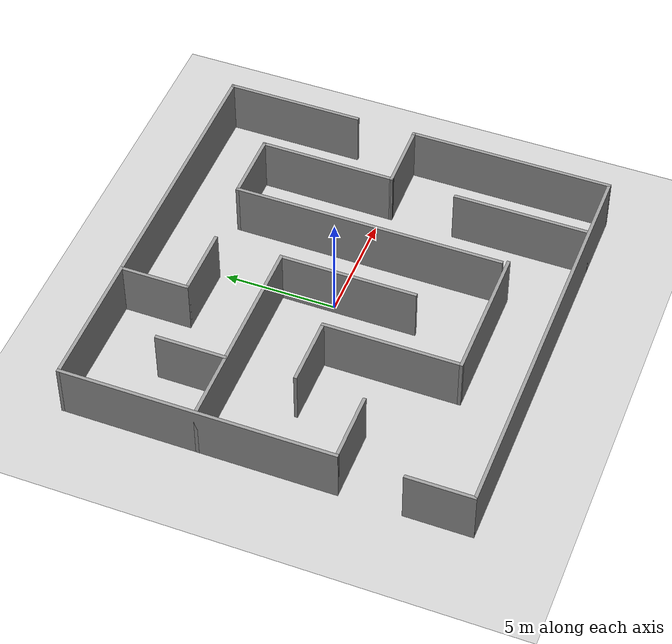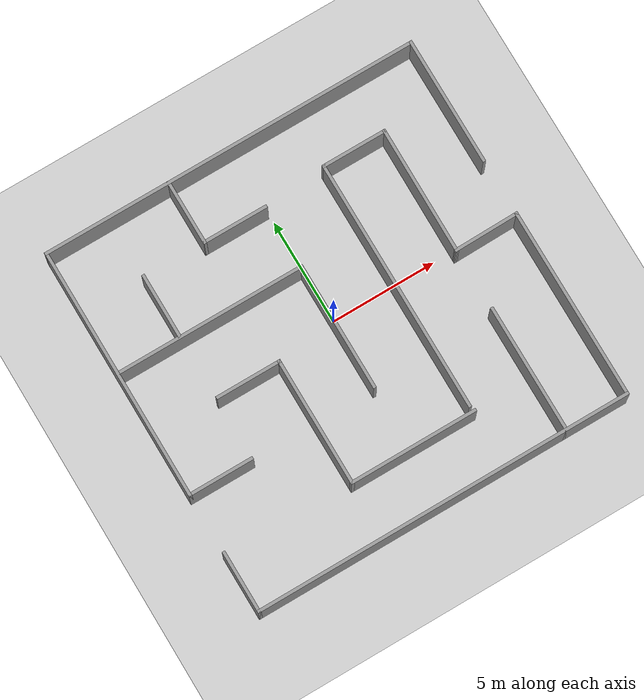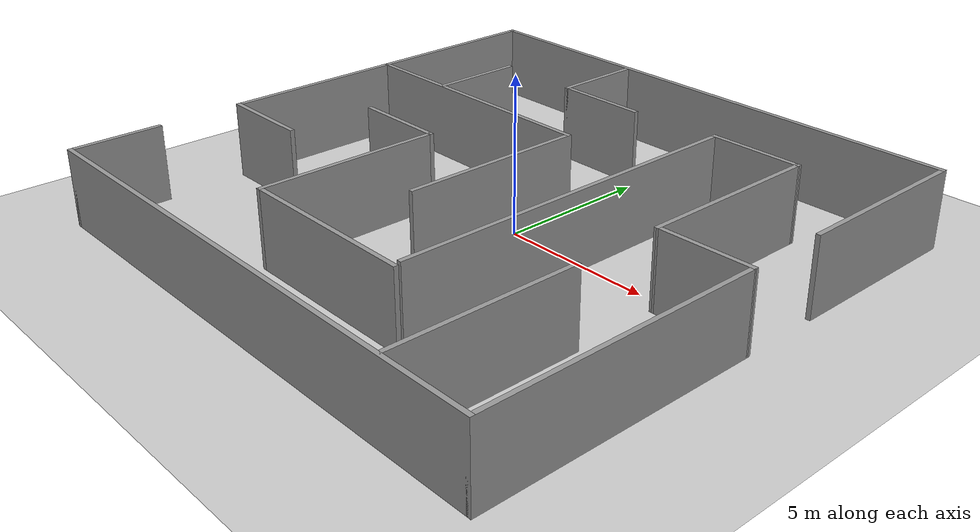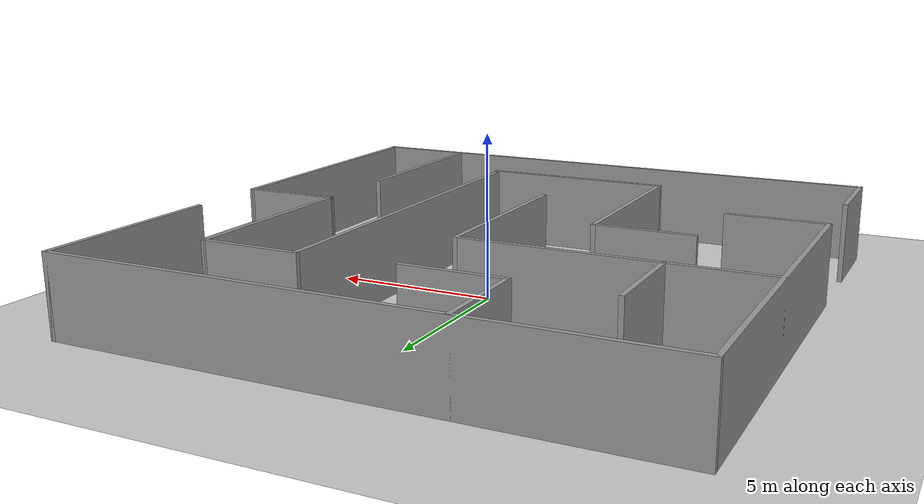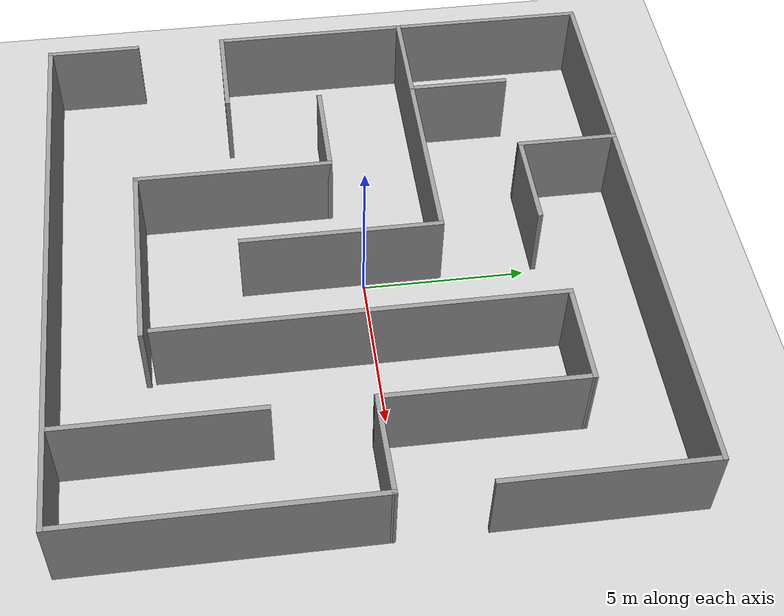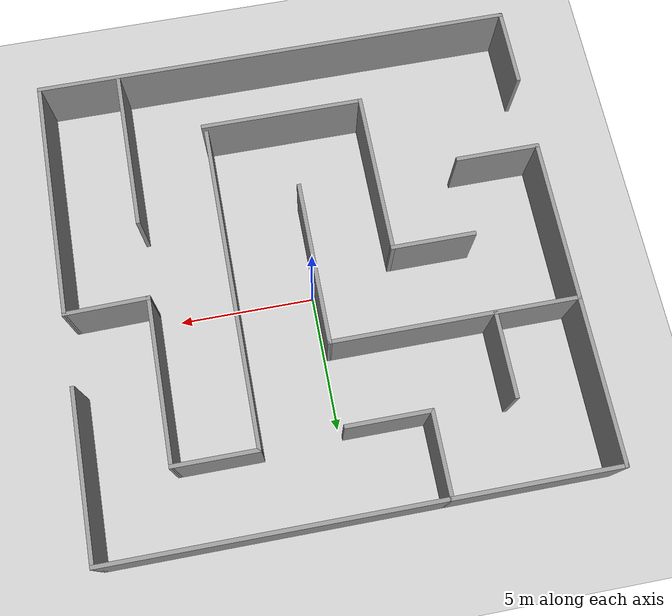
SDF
<sdf version="1.7">
 <world name="default">
  <light name="sun" type="directional">
   <pose>0 0 10 0 -0 0</pose>
   <diffuse>0.8 0.8 0.8 1</diffuse>
   <specular>0.2 0.2 0.2 1</specular>
   <attenuation>
    <range>1000</range>
    <constant>0.9</constant>
    <linear>0.01</linear>
    <quadratic>0.001</quadratic>
   </attenuation>
   <direction>-0.5 0.1 -0.9</direction>
   <spot><inner_angle>0</inner_angle><outer_angle>0</outer_angle><falloff>0</falloff></spot>
  </light>
  <model name="ground_plane">
   <static>1</static>
   <link name="link">
    <collision name="collision">
     <geometry><plane><normal>0 0 1</normal><size>100 100</size></plane></geometry>
     <surface>
      <contact><collide_bitmask>65535</collide_bitmask></contact>
      <friction><ode><mu>100</mu><mu2>50</mu2></ode></friction>
     </surface>
    </collision>
    <visual name="visual">
     <cast_shadows>0</cast_shadows>
     <geometry><plane><normal>0 0 1</normal><size>100 100</size></plane></geometry>
     <material>
      <script><uri>file://media/materials/scripts/gazebo.material</uri><name>Gazebo/Grey</name></script>
     </material>
    </visual>
   </link>
  </model>
  <gravity>0 0 -9.8</gravity>
  <magnetic_field>6e-06 2.3e-05 -4.2e-05</magnetic_field>
  <atmosphere type="adiabatic"/>
  <physics type="ode">
   <max_step_size>0.001</max_step_size>
   <real_time_factor>1</real_time_factor>
   <real_time_update_rate>1000</real_time_update_rate>
  </physics>
  <scene><ambient>0.4 0.4 0.4 1</ambient><background>0.7 0.7 0.7 1</background><shadows>1</shadows></scene>
  <spherical_coordinates>
   <surface_model>EARTH_WGS84</surface_model>
   <latitude_deg>0</latitude_deg>
   <longitude_deg>0</longitude_deg>
   <elevation>0</elevation>
   <heading_deg>0</heading_deg>
  </spherical_coordinates>
  <model name="Untitled">
   <pose>-0.179485 -0.505 0 0 -0 0</pose>
   <link name="Wall_102">
    <collision name="Wall_102_Collision">
     <geometry><box><size>3.15 0.15 2.5</size></box></geometry>
     <pose>0 0 1.25 0 -0 0</pose>
    </collision>
    <visual name="Wall_102_Visual">
     <pose>0 0 1.25 0 -0 0</pose>
     <geometry><box><size>3.15 0.15 2.5</size></box></geometry>
     <material>
      <script><uri>file://media/materials/scripts/gazebo.material</uri><name>Gazebo/Grey</name></script>
      <ambient>1 1 1 1</ambient>
     </material>
     <meta><layer>0</layer></meta>
    </visual>
    <pose>7.49948 0.125 0 0 -0 -3.12493</pose>
   </link>
   <link name="Wall_107">
    <collision name="Wall_107_Collision">
     <geometry><box><size>3.15 0.15 2.5</size></box></geometry>
     <pose>0 0 1.25 0 -0 0</pose>
    </collision>
    <visual name="Wall_107_Visual">
     <pose>0 0 1.25 0 -0 0</pose>
     <geometry><box><size>3.15 0.15 2.5</size></box></geometry>
     <material>
      <script><uri>file://media/materials/scripts/gazebo.material</uri><name>Gazebo/Grey</name></script>
      <ambient>1 1 1 1</ambient>
     </material>
     <meta><layer>0</layer></meta>
    </visual>
    <pose>-3.00052 7.35 0 0 -0 -1.5708</pose>
   </link>
   <link name="Wall_110">
    <collision name="Wall_110_Collision">
     <geometry><box><size>3.15 0.15 2.5</size></box></geometry>
     <pose>0 0 1.25 0 -0 0</pose>
    </collision>
    <visual name="Wall_110_Visual">
     <pose>0 0 1.25 0 -0 0</pose>
     <geometry><box><size>3.15 0.15 2.5</size></box></geometry>
     <material>
      <script><uri>file://media/materials/scripts/gazebo.material</uri><name>Gazebo/Grey</name></script>
      <ambient>1 1 1 1</ambient>
     </material>
     <meta><layer>0</layer></meta>
    </visual>
    <pose>-1.50052 5.85 0 0 -0 0</pose>
   </link>
   <link name="Wall_114">
    <collision name="Wall_114_Collision">
     <geometry><box><size>9.15 0.15 2.5</size></box></geometry>
     <pose>0 0 1.25 0 -0 0</pose>
    </collision>
    <visual name="Wall_114_Visual">
     <pose>0 0 1.25 0 -0 0</pose>
     <geometry><box><size>9.15 0.15 2.5</size></box></geometry>
     <material>
      <script><uri>file://media/materials/scripts/gazebo.material</uri><name>Gazebo/Grey</name></script>
      <ambient>1 1 1 1</ambient>
     </material>
     <meta><layer>0</layer></meta>
    </visual>
    <pose>-4.50052 2.85 0 0 -0 0</pose>
   </link>
   <link name="Wall_116">
    <collision name="Wall_116_Collision">
     <geometry><box><size>6.15 0.15 2.5</size></box></geometry>
     <pose>0 0 1.25 0 -0 0</pose>
    </collision>
    <visual name="Wall_116_Visual">
     <pose>0 0 1.25 0 -0 0</pose>
     <geometry><box><size>6.15 0.15 2.5</size></box></geometry>
     <material>
      <script><uri>file://media/materials/scripts/gazebo.material</uri><name>Gazebo/Grey</name></script>
      <ambient>1 1 1 1</ambient>
     </material>
     <meta><layer>0</layer></meta>
    </visual>
    <pose>-0.000515 -0.15 0 0 -0 -1.5708</pose>
   </link>
   <link name="Wall_125">
    <collision name="Wall_125_Collision">
     <geometry><box><size>3.15 0.15 2.5</size></box></geometry>
     <pose>0 0 1.25 0 -0 0</pose>
    </collision>
    <visual name="Wall_125_Visual">
     <pose>0 0 1.25 0 -0 0</pose>
     <geometry><box><size>3.15 0.15 2.5</size></box></geometry>
     <material>
      <script><uri>file://media/materials/scripts/gazebo.material</uri><name>Gazebo/Grey</name></script>
      <ambient>1 1 1 1</ambient>
     </material>
     <meta><layer>0</layer></meta>
    </visual>
    <pose>-5.95352 4.397 0 0 -0 1.5708</pose>
   </link>
   <link name="Wall_51">
    <collision name="Wall_51_Collision">
     <geometry><box><size>18.15 0.15 2.5</size></box></geometry>
     <pose>0 0 1.25 0 -0 0</pose>
    </collision>
    <visual name="Wall_51_Visual">
     <pose>0 0 1.25 0 -0 0</pose>
     <geometry><box><size>18.15 0.15 2.5</size></box></geometry>
     <material>
      <script><uri>file://media/materials/scripts/gazebo.material</uri><name>Gazebo/Grey</name></script>
      <ambient>1 1 1 1</ambient>
     </material>
     <meta><layer>0</layer></meta>
    </visual>
    <pose>-0.000515 8.85 0 0 -0 0</pose>
   </link>
   <link name="Wall_55">
    <collision name="Wall_55_Collision">
     <geometry><box><size>12.15 0.15 2.5</size></box></geometry>
     <pose>0 0 1.25 0 -0 0</pose>
    </collision>
    <visual name="Wall_55_Visual">
     <pose>0 0 1.25 0 -0 0</pose>
     <geometry><box><size>12.15 0.15 2.5</size></box></geometry>
     <material>
      <script><uri>file://media/materials/scripts/gazebo.material</uri><name>Gazebo/Grey</name></script>
      <ambient>1 1 1 1</ambient>
     </material>
     <meta><layer>0</layer></meta>
    </visual>
    <pose>-9.00052 2.85 0 0 -0 -1.5708</pose>
   </link>
   <link name="Wall_57">
    <collision name="Wall_57_Collision">
     <geometry><box><size>3.15 0.15 2.5</size></box></geometry>
     <pose>0 0 1.25 0 -0 0</pose>
    </collision>
    <visual name="Wall_57_Visual">
     <pose>0 0 1.25 0 -0 0</pose>
     <geometry><box><size>3.15 0.15 2.5</size></box></geometry>
     <material>
      <script><uri>file://media/materials/scripts/gazebo.material</uri><name>Gazebo/Grey</name></script>
      <ambient>1 1 1 1</ambient>
     </material>
     <meta><layer>0</layer></meta>
    </visual>
    <pose>-7.50052 -3.15 0 0 -0 0</pose>
   </link>
   <link name="Wall_64">
    <collision name="Wall_64_Collision">
     <geometry><box><size>3 0.15 2.5</size></box></geometry>
     <pose>0 0 1.25 0 -0 0</pose>
    </collision>
    <visual name="Wall_64_Visual">
     <pose>0 0 1.25 0 -0 0</pose>
     <geometry><box><size>3 0.15 2.5</size></box></geometry>
     <material>
      <script><uri>file://media/materials/scripts/gazebo.material</uri><name>Gazebo/Grey</name></script>
      <ambient>1 1 1 1</ambient>
     </material>
     <meta><layer>0</layer></meta>
    </visual>
    <pose>-9.00052 -7.425 0 0 -0 -1.5708</pose>
   </link>
   <link name="Wall_70">
    <collision name="Wall_70_Collision">
     <geometry><box><size>18.15 0.15 2.5</size></box></geometry>
     <pose>0 0 1.25 0 -0 0</pose>
    </collision>
    <visual name="Wall_70_Visual">
     <pose>0 0 1.25 0 -0 0</pose>
     <geometry><box><size>18.15 0.15 2.5</size></box></geometry>
     <material>
      <script><uri>file://media/materials/scripts/gazebo.material</uri><name>Gazebo/Grey</name></script>
      <ambient>1 1 1 1</ambient>
     </material>
     <meta><layer>0</layer></meta>
    </visual>
    <pose>-0.000515 -8.85 0 0 -0 0</pose>
   </link>
   <link name="Wall_72">
    <collision name="Wall_72_Collision">
     <geometry><box><size>9.15 0.15 2.5</size></box></geometry>
     <pose>0 0 1.25 0 -0 0</pose>
    </collision>
    <visual name="Wall_72_Visual">
     <pose>0 0 1.25 0 -0 0</pose>
     <geometry><box><size>9.15 0.15 2.5</size></box></geometry>
     <material>
      <script><uri>file://media/materials/scripts/gazebo.material</uri><name>Gazebo/Grey</name></script>
      <ambient>1 1 1 1</ambient>
     </material>
     <meta><layer>0</layer></meta>
    </visual>
    <pose>8.99948 -4.35 0 0 -0 1.5708</pose>
   </link>
   <link name="Wall_76">
    <collision name="Wall_76_Collision">
     <geometry><box><size>6.15 0.15 2.5</size></box></geometry>
     <pose>0 0 1.25 0 -0 0</pose>
    </collision>
    <visual name="Wall_76_Visual">
     <pose>0 0 1.25 0 -0 0</pose>
     <geometry><box><size>6.15 0.15 2.5</size></box></geometry>
     <material>
      <script><uri>file://media/materials/scripts/gazebo.material</uri><name>Gazebo/Grey</name></script>
      <ambient>1 1 1 1</ambient>
     </material>
     <meta><layer>0</layer></meta>
    </visual>
    <pose>5.99948 -5.85 0 0 -0 1.5708</pose>
   </link>
   <link name="Wall_78">
    <collision name="Wall_78_Collision">
     <geometry><box><size>6.15 0.15 2.5</size></box></geometry>
     <pose>0 0 1.25 0 -0 0</pose>
    </collision>
    <visual name="Wall_78_Visual">
     <pose>0 0 1.25 0 -0 0</pose>
     <geometry><box><size>6.15 0.15 2.5</size></box></geometry>
     <material>
      <script><uri>file://media/materials/scripts/gazebo.material</uri><name>Gazebo/Grey</name></script>
      <ambient>1 1 1 1</ambient>
     </material>
     <meta><layer>0</layer></meta>
    </visual>
    <pose>8.99948 5.85 0 0 -0 -1.5708</pose>
   </link>
   <link name="Wall_83">
    <collision name="Wall_83_Collision">
     <geometry><box><size>6.15 0.15 2.5</size></box></geometry>
     <pose>0 0 1.25 0 -0 0</pose>
    </collision>
    <visual name="Wall_83_Visual">
     <pose>0 0 1.25 0 -0 0</pose>
     <geometry><box><size>6.15 0.15 2.5</size></box></geometry>
     <material>
      <script><uri>file://media/materials/scripts/gazebo.material</uri><name>Gazebo/Grey</name></script>
      <ambient>1 1 1 1</ambient>
     </material>
     <meta><layer>0</layer></meta>
    </visual>
    <pose>6.01398 3.1 0 0 -0 1.56596</pose>
   </link>
   <link name="Wall_90">
    <collision name="Wall_90_Collision">
     <geometry><box><size>3.15 0.15 2.5</size></box></geometry>
     <pose>0 0 1.25 0 -0 0</pose>
    </collision>
    <visual name="Wall_90_Visual">
     <pose>0 0 1.25 0 -0 0</pose>
     <geometry><box><size>3.15 0.15 2.5</size></box></geometry>
     <material>
      <script><uri>file://media/materials/scripts/gazebo.material</uri><name>Gazebo/Grey</name></script>
      <ambient>1 1 1 1</ambient>
     </material>
     <meta><layer>0</layer></meta>
    </visual>
    <pose>4.52848 6.1 0 0 -0 3.14159</pose>
   </link>
   <link name="Wall_92">
    <collision name="Wall_92_Collision">
     <geometry><box><size>12.15 0.15 2.5</size></box></geometry>
     <pose>0 0 1.25 0 -0 0</pose>
    </collision>
    <visual name="Wall_92_Visual">
     <pose>0 0 1.25 0 -0 0</pose>
     <geometry><box><size>12.15 0.15 2.5</size></box></geometry>
     <material>
      <script><uri>file://media/materials/scripts/gazebo.material</uri><name>Gazebo/Grey</name></script>
      <ambient>1 1 1 1</ambient>
     </material>
     <meta><layer>0</layer></meta>
    </visual>
    <pose>3.02848 0.1 0 0 -0 -1.5708</pose>
   </link>
   <link name="Wall_94">
    <collision name="Wall_94_Collision">
     <geometry><box><size>6.15 0.15 2.5</size></box></geometry>
     <pose>0 0 1.25 0 -0 0</pose>
    </collision>
    <visual name="Wall_94_Visual">
     <pose>0 0 1.25 0 -0 0</pose>
     <geometry><box><size>6.15 0.15 2.5</size></box></geometry>
     <material>
      <script><uri>file://media/materials/scripts/gazebo.material</uri><name>Gazebo/Grey</name></script>
      <ambient>1 1 1 1</ambient>
     </material>
     <meta><layer>0</layer></meta>
    </visual>
    <pose>0.110485 -6.181 0 0 -0 3.14159</pose>
   </link>
   <link name="Wall_96">
    <collision name="Wall_96_Collision">
     <geometry><box><size>6.15 0.15 2.5</size></box></geometry>
     <pose>0 0 1.25 0 -0 0</pose>
    </collision>
    <visual name="Wall_96_Visual">
     <pose>0 0 1.25 0 -0 0</pose>
     <geometry><box><size>6.15 0.15 2.5</size></box></geometry>
     <material>
      <script><uri>file://media/materials/scripts/gazebo.material</uri><name>Gazebo/Grey</name></script>
      <ambient>1 1 1 1</ambient>
     </material>
     <meta><layer>0</layer></meta>
    </visual>
    <pose>-2.88951 -3.181 0 0 -0 1.5708</pose>
   </link>
   <link name="Wall_98">
    <collision name="Wall_98_Collision">
     <geometry><box><size>3.15 0.15 2.5</size></box></geometry>
     <pose>0 0 1.25 0 -0 0</pose>
    </collision>
    <visual name="Wall_98_Visual">
     <pose>0 0 1.25 0 -0 0</pose>
     <geometry><box><size>3.15 0.15 2.5</size></box></geometry>
     <material>
      <script><uri>file://media/materials/scripts/gazebo.material</uri><name>Gazebo/Grey</name></script>
      <ambient>1 1 1 1</ambient>
     </material>
     <meta><layer>0</layer></meta>
    </visual>
    <pose>-4.38952 -0.181 0 0 -0 3.14159</pose>
   </link>
   <static>1</static>
  </model>
 </world>
</sdf>
